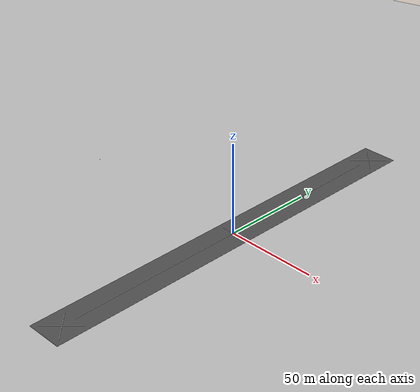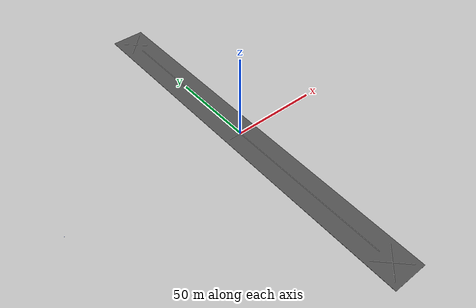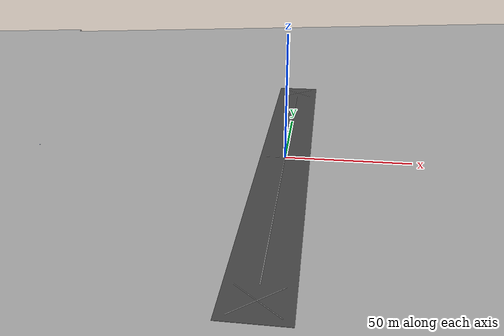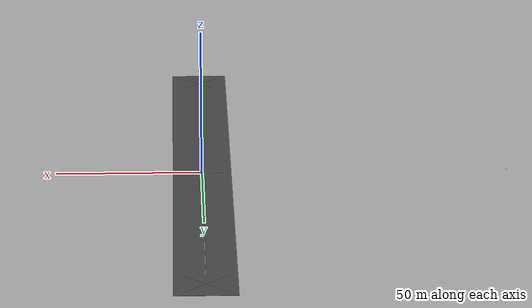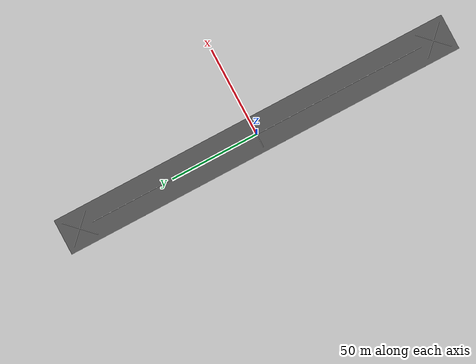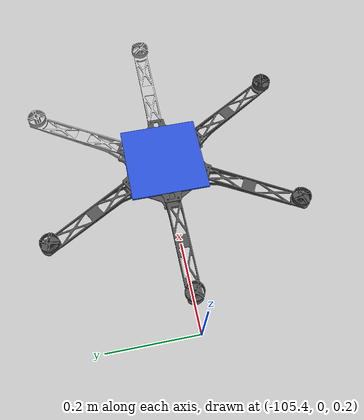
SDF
<sdf version='1.6'>
  <world name='default'>

	<gui>
		<camera name="user_camera">
			  <pose>-197.304 -5.387 72.475 0 0.55 0</pose>
		</camera>
	</gui>

    <include>
      <uri>model://sun</uri>
    </include>

    <include>
      <pose frame=''>0 0 0 0 0 1.5708</pose>
      <uri>model://landing_strip</uri>
    </include>

    <include>
      <pose frame=''>-105 0 0.2 0 0 0.523599</pose>
      <uri>model://f550_amazing_dead_blue</uri>
    </include>

    <physics name='default_physics' default='1' type='ode'>				# default = name=default_physics, default=0, type=ode
      <max_step_size>0.002</max_step_size>								# default = 0.001
      <real_time_factor>1.0</real_time_factor>							# default = 1
      <real_time_update_rate>500</real_time_update_rate>				# default = 1000
	  <max_contacts>10</max_contacts>									# default = 20
      <ode>																# default = ode - alternative = bullet, simbody, dart
        <solver>
          <type>quick</type>											# default = quick - alternative = world (slower)
		  <min_step_size>0.0001</min_step_size>							# default = 0.0001
          <iters>10</iters>												# default = 50
          <sor>1.3</sor>												# default = 1.3
          <use_dynamic_moi_rescaling>0</use_dynamic_moi_rescaling>		# default = 0
		  <friction_model>pyramid_model</friction_model>				# default = pyramid_model
        </solver>
        <constraints>
          <cfm>0</cfm>													# default = 0
          <erp>0.2</erp>												# default = 0.2
          <contact_max_correcting_vel>100</contact_max_correcting_vel>	# default = 100
          <contact_surface_layer>0.001</contact_surface_layer>			# default = 0.001
        </constraints>
      </ode>
    </physics>

    <gravity>0 0 -9.8066</gravity>										# default = 0 0 -9.8
    <magnetic_field>6e-06 2.3e-05 -4.2e-05</magnetic_field>				# default = 6e-06 2.3e-05 -4.2e-05
    <atmosphere type='adiabatic'/>										# default = adiabatic

    <scene>
      <shadows>0</shadows>
    </scene>

    <spherical_coordinates>
      <surface_model>EARTH_WGS84</surface_model>
      <latitude_deg>0</latitude_deg>
      <longitude_deg>0</longitude_deg>
      <elevation>0</elevation>
      <heading_deg>0</heading_deg>
    </spherical_coordinates>

  </world>
</sdf>

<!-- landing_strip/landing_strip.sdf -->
<sdf version='1.6'>

	<model name='landing_strip'>
      <static>1</static>
	  <pose>0 0 0 0 0 0</pose>
      <link name='base_link'>

        <collision name='landing_strip_collision'>
	  	<pose>0 0 0.05 0 0 0</pose>
          <geometry>
            <box>
              <size>230 20 0.1</size>
            </box>
          </geometry>
			<surface>
				<friction>
					<ode>
						<mu>50</mu>
						<mu2>50</mu2>
					</ode>
				</friction>
				<contact>
					<ode>
						<min_depth>0.001</min_depth>
					</ode>
				</contact>
			</surface>
          <max_contacts>10</max_contacts>
        </collision>

        <visual name='landing_strip_visual'>
	  	<pose>0 0 0.05 0 0 0</pose>
          <cast_shadows>0</cast_shadows>
          <geometry>
            <box>
              <size>230 20 0.1</size>
            </box>
          </geometry>
          <material>
            <script>
              <uri>model://asphalt_plane/materials/scripts</uri>
              <uri>model://asphalt_plane/materials/textures</uri>
              <name>vrc/asphalt</name>
            </script>
          </material>
        </visual>

        <visual name='white_line_long_visual'>
	  	<pose>0 0 0.1 0 0 0</pose>
          <cast_shadows>0</cast_shadows>
          <geometry>
            <box>
              <size>195 0.25 0.001</size>
            </box>
          </geometry>
        </visual>

        <visual name='white_line_short_visual'>
	  	<pose>0 0 0.1 0 0 0</pose>
          <cast_shadows>0</cast_shadows>
          <geometry>
            <box>
              <size>0.25 15 0.001</size>
            </box>
          </geometry>
        </visual>

        <visual name='white_line1_visual'>
	  	<pose>105 0 0.1 0 0 0.785398</pose>
          <cast_shadows>0</cast_shadows>
          <geometry>
            <box>
              <size>20 0.25 0.001</size>
            </box>
          </geometry>
        </visual>

        <visual name='white_line2_visual'>
	  	<pose>105 0 0.1 0 0 -0.785398</pose>
          <cast_shadows>0</cast_shadows>
          <geometry>
            <box>
              <size>20 0.25 0.001</size>
            </box>
          </geometry>
        </visual>

        <visual name='white_line3_visual'>
	  	<pose>-105 0 0.1 0 0 0.785398</pose>
          <cast_shadows>0</cast_shadows>
          <geometry>
            <box>
              <size>20 0.25 0.001</size>
            </box>
          </geometry>
        </visual>

        <visual name='white_line4_visual'>
	  	<pose>-105 0 0.1 0 0 -0.785398</pose>
          <cast_shadows>0</cast_shadows>
          <geometry>
            <box>
              <size>20 0.25 0.001</size>
            </box>
          </geometry>
        </visual>

        <self_collide>0</self_collide>
        <kinematic>0</kinematic>
      </link>

      <link name='world'>
        <collision name='world_collision'>
          <geometry>
          	<mesh>
          	<scale>1 1 1</scale>
          		<uri>model://landing_strip/meshes/Timpa.dae</uri>
          	</mesh>
          </geometry>
        </collision>

        <visual name='world_visual'>
		<cast_shadows>0</cast_shadows>
			<geometry>
				<mesh>
					<scale>1 1 1</scale>
					<uri>model://landing_strip/meshes/Timpa.dae</uri>
				</mesh>
			</geometry>
        </visual>
	</link>

    </model>
</sdf>

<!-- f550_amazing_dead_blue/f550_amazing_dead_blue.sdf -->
<sdf version="1.5">
  <model name="f550_amazing_dead_blue">
    <static>false</static>
    <pose>0 0 0 0 0 0</pose>

<!-- ######################################## LOWER_PLATE # ######################################## -->
    <link name="base_link">
	<gravity>true</gravity>
	<pose>0 0 0.0015 0 0 0</pose>

      <inertial>
        <mass>0.01</mass>
        <inertia>
          <ixx>0.01</ixx>
          <ixy>0</ixy>
          <ixz>0</ixz>
          <iyy>0.01</iyy>
          <iyz>0</iyz>
          <izz>0.01</izz>
        </inertia>
      </inertial>

      <collision name="base_link_collision">
		<pose>0 0 -0.01 0 0 0</pose>
        <geometry>
			<box>
				<size>0.179 0.179 0.003</size>
			</box>
        </geometry>
			<surface>
				<friction>
					<ode>
						<mu>1</mu>
						<mu2>1</mu2>
					</ode>
				</friction>
				<contact>
					<ode>
						<min_depth>0.001</min_depth>
					</ode>
				</contact>
			</surface>
      </collision>

      <visual name="base_link_visual">
        <geometry>
          <mesh>
            <scale>0.001 0.001 0.001</scale>
            <uri>model://f550_amazing/meshes/Lower_plate_CG.STL</uri>
          </mesh>
        </geometry>
        <material>
          <script>
            <name>Gazebo/DarkGrey</name>
            <uri>file://media/materials/scripts/gazebo.material</uri>
          </script>
        </material>
      </visual>
    </link>
<!-- ####################################### /LOWER_PLATE # ######################################## -->

<!-- ######################################## TOP_PLATE ############################################ -->
    <link name="Top_plate_link">
	<gravity>true</gravity>
	<pose>0 0 0.0375 0 0 2.09439510239</pose>

      <inertial>
        <mass>0.01</mass>
        <inertia>
          <ixx>0.01</ixx>
          <ixy>0</ixy>
          <ixz>0</ixz>
          <iyy>0.01</iyy>
          <iyz>0</iyz>
          <izz>0.01</izz>
        </inertia>
      </inertial>

      <collision name="collision_Top_plate">
        <geometry>
        <mesh>
            <scale>0.001 0.001 0.001</scale>
            <uri>model://f550_amazing/meshes/Top_plate_CG.STL</uri>
          </mesh>
        </geometry>
			<surface>
				<friction>
					<ode>
						<mu>1</mu>
						<mu2>1</mu2>
					</ode>
				</friction>
				<contact>
					<ode>
						<min_depth>0.001</min_depth>
					</ode>
				</contact>
			</surface>
      </collision>

      <visual name="visual_Top_plate">
        <geometry>
          <mesh>
            <scale>0.001 0.001 0.001</scale>
            <uri>model://f550_amazing/meshes/Top_plate_CG.STL</uri>
          </mesh>
        </geometry>
        <material>
          <script>
            <name>Gazebo/DarkGrey</name>
            <uri>file://media/materials/scripts/gazebo.material</uri>
          </script>
        </material>
      </visual>

      <visual name="visual_Top_plate_Blue">
	  <pose>0 0 0 0 0 0.523599</pose>
        <geometry>
			<box>
				<size>0.179 0.179 0.006</size>
			</box>
        </geometry>
          <material>
            <script>
              <name>Gazebo/Blue</name>
              <uri>__default__</uri>
            </script>
            <ambient>0 0 1 1</ambient>
            <diffuse>0 0 1 1</diffuse>
            <specular>0.1 0.1 0.1 1</specular>
            <emissive>0 0 0 1</emissive>
            <shader type='vertex'>
              <normal_map>__default__</normal_map>
            </shader>
          </material>
      </visual>

    </link>

	<joint name='Lower_Top_joint' type='fixed'>
	  	<child>Top_plate_link</child>
	  	<parent>base_link</parent>
	</joint>
<!-- ####################################### /TOP_PLATE ############################################ -->

<!-- ############################################# ARM1 ############################################ -->
    <link name="Arm1_link">
	<gravity>true</gravity>
	<pose>0 0.1874 0.009875004 0 0 1.57079632679</pose>

      <inertial>
        <mass>0.01</mass>
        <inertia>
          <ixx>0.001</ixx>
          <ixy>0</ixy>
          <ixz>0</ixz>
          <iyy>0.001</iyy>
          <iyz>0</iyz>
          <izz>0.001</izz>
        </inertia>
      </inertial>

      <visual name="visual_Arm1">
        <geometry>
          <mesh>
            <scale>0.001 0.001 0.001</scale>
            <uri>model://f550_amazing/meshes/Arm_CG.STL</uri>
          </mesh>
        </geometry>
        <material>
          <script>
            <name>Gazebo/DarkGrey</name>
            <uri>file://media/materials/scripts/gazebo.material</uri>
          </script>
        </material>
      </visual>
    </link>

	<joint name='Lower_Arm1_joint' type='fixed'>
	  	<child>Arm1_link</child>
	  	<parent>base_link</parent>
	</joint>
<!-- ############################################ /ARM1 ############################################ -->

<!-- ############################################# ARM2 ############################################ -->
    <link name="Arm2_link">
	<gravity>true</gravity>
	<pose>0.162293160669 0.0937 0.009875004 0 0 0.523598775598</pose>

      <inertial>
        <mass>0.01</mass>
        <inertia>
          <ixx>0.001</ixx>
          <ixy>0</ixy>
          <ixz>0</ixz>
          <iyy>0.001</iyy>
          <iyz>0</iyz>
          <izz>0.001</izz>
        </inertia>
      </inertial>

      <visual name="visual_Arm2">
        <geometry>
          <mesh>
            <scale>0.001 0.001 0.001</scale>
            <uri>model://f550_amazing/meshes/Arm_CG.STL</uri>
          </mesh>
        </geometry>
      </visual>
    </link>

	<joint name='Lower_Arm2_joint' type='fixed'>
	  	<child>Arm2_link</child>
	  	<parent>base_link</parent>
	</joint>
<!-- ############################################ /ARM2 ############################################ -->

<!-- ############################################# ARM3 ############################################ -->
    <link name="Arm3_link">
	<gravity>true</gravity>
	<pose>0.162293160669 -0.0937 0.009875004 0 0 -0.523598775598</pose>

      <inertial>
        <mass>0.01</mass>
        <inertia>
          <ixx>0.001</ixx>
          <ixy>0</ixy>
          <ixz>0</ixz>
          <iyy>0.001</iyy>
          <iyz>0</iyz>
          <izz>0.001</izz>
        </inertia>
      </inertial>

      <visual name="visual_Arm3">
        <geometry>
          <mesh>
            <scale>0.001 0.001 0.001</scale>
            <uri>model://f550_amazing/meshes/Arm_CG.STL</uri>
          </mesh>
        </geometry>
      </visual>
    </link>

	<joint name='Lower_Arm3_joint' type='fixed'>
	  	<child>Arm3_link</child>
	  	<parent>base_link</parent>
	</joint>
<!-- ############################################ /ARM3 ############################################ -->

<!-- ############################################# ARM4 ############################################ -->
    <link name="Arm4_link">
	<gravity>true</gravity>
	<pose>0 -0.1874 0.009875004 0 0 -1.57079632679</pose>

      <inertial>
        <mass>0.01</mass>
        <inertia>
          <ixx>0.001</ixx>
          <ixy>0</ixy>
          <ixz>0</ixz>
          <iyy>0.001</iyy>
          <iyz>0</iyz>
          <izz>0.001</izz>
        </inertia>
      </inertial>

      <visual name="visual_Arm4">
        <geometry>
          <mesh>
            <scale>0.001 0.001 0.001</scale>
            <uri>model://f550_amazing/meshes/Arm_CG.STL</uri>
          </mesh>
        </geometry>
        <material>
          <script>
            <name>Gazebo/DarkGrey</name>
            <uri>file://media/materials/scripts/gazebo.material</uri>
          </script>
        </material>
      </visual>
    </link>

	<joint name='Lower_Arm4_joint' type='fixed'>
	  	<child>Arm4_link</child>
	  	<parent>base_link</parent>
	</joint>
<!-- ############################################ /ARM4 ############################################ -->

<!-- ############################################# ARM5 ############################################ -->
    <link name="Arm5_link">
	<gravity>true</gravity>
	<pose>-0.162293160669 -0.0937 0.009875004 0 0 3.66519142919</pose>

      <inertial>
        <mass>0.01</mass>
        <inertia>
          <ixx>0.001</ixx>
          <ixy>0</ixy>
          <ixz>0</ixz>
          <iyy>0.001</iyy>
          <iyz>0</iyz>
          <izz>0.001</izz>
        </inertia>
      </inertial>

      <visual name="visual_Arm5">
        <geometry>
          <mesh>
            <scale>0.001 0.001 0.001</scale>
            <uri>model://f550_amazing/meshes/Arm_CG.STL</uri>
          </mesh>
        </geometry>
        <material>
          <script>
            <name>Gazebo/DarkGrey</name>
            <uri>file://media/materials/scripts/gazebo.material</uri>
          </script>
        </material>
      </visual>
    </link>

	<joint name='Lower_Arm5_joint' type='fixed'>
	  	<child>Arm5_link</child>
	  	<parent>base_link</parent>
	</joint>
<!-- ############################################ /ARM5 ############################################ -->

<!-- ############################################# ARM6 ############################################ -->
    <link name="Arm6_link">
	<gravity>true</gravity>
	<pose>-0.162293160669 0.0937 0.009875004 0 0 2.61799387799</pose>

      <inertial>
        <mass>0.01</mass>
        <inertia>
          <ixx>0.001</ixx>
          <ixy>0</ixy>
          <ixz>0</ixz>
          <iyy>0.001</iyy>
          <iyz>0</iyz>
          <izz>0.001</izz>
        </inertia>
      </inertial>

      <visual name="visual_Arm6">
        <geometry>
          <mesh>
            <scale>0.001 0.001 0.001</scale>
            <uri>model://f550_amazing/meshes/Arm_CG.STL</uri>
          </mesh>
        </geometry>
        <material>
          <script>
            <name>Gazebo/DarkGrey</name>
            <uri>file://media/materials/scripts/gazebo.material</uri>
          </script>
        </material>
      </visual>
    </link>

	<joint name='Lower_Arm6_joint' type='fixed'>
	  	<child>Arm6_link</child>
	  	<parent>base_link</parent>
	</joint>
<!-- ############################################ /ARM6 ############################################ -->

  </model>
</sdf>
